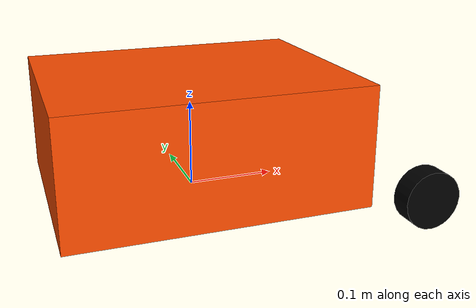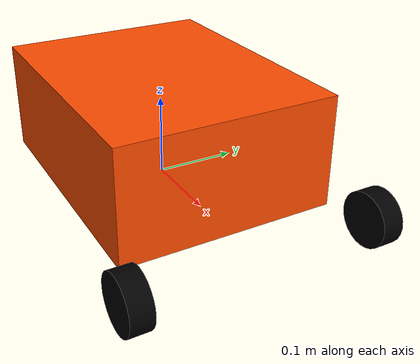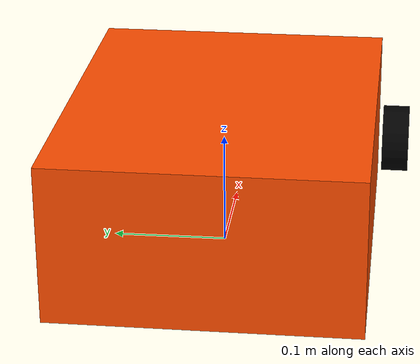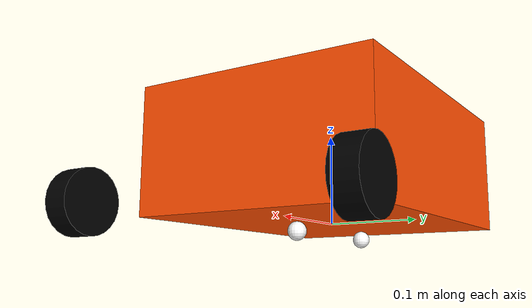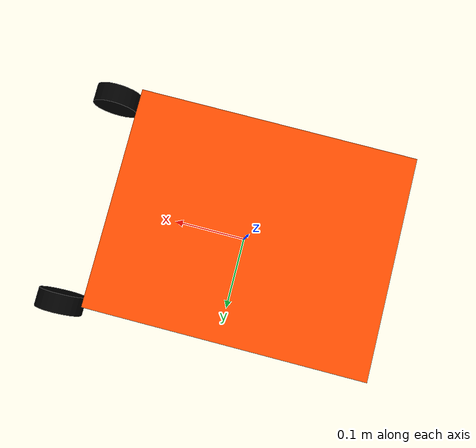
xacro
<?xml version="1.0"?>
<!-- Basic differential drive mobile base -->
<robot xmlns:xacro="http://www.ros.org/wiki/xacro" name="superbot_robot">
  <xacro:arg name="prefix" default="" />

  <xacro:include filename="$(find superbot_hardware)/urdf/superbot_description.urdf.xacro" />

  <!-- Import Rviz colors -->
  <xacro:include filename="$(find superbot_hardware)/urdf/superbot.materials.xacro" />

  <!-- Import superbot ros2_control description -->
  <xacro:include filename="$(find superbot_hardware)/ros2_control/superbot.ros2_control.xacro" />

  <xacro:superbot prefix="$(arg prefix)" />

  <xacro:superbot_ros2_control
    name="superbot" prefix="$(arg prefix)" />

</robot>

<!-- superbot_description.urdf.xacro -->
<robot xmlns:xacro="http://www.ros.org/wiki/xacro">

  <xacro:macro name="superbot" params="prefix">

    <!-- Konstanta dan properti dimensi robot -->
    <xacro:property name="PI" value="3.1415926535897931"/>
    <xacro:property name="base_mass" value="1.0"/>
    <xacro:property name="base_width" value="0.265"/>
    <xacro:property name="base_length" value="0.335"/>
    <xacro:property name="base_height" value="0.138"/>
    <xacro:property name="wheel_mass" value="0.05"/>
    <xacro:property name="wheel_len" value="0.026"/>
    <xacro:property name="wheel_radius" value="0.033"/>
    <xacro:property name="wheel_offset_x" value="0.226"/>
    <xacro:property name="wheel_offset_y" value="0.1485"/>
    <xacro:property name="wheel_offset_z" value="0.01"/>
    <xacro:property name="caster_wheel_mass" value="0.01"/>
    <xacro:property name="caster_wheel_radius" value="0.01"/>
    <xacro:property name="caster_wheel_offset_x" value="0.075"/>
    <xacro:property name="caster_wheel_offset_z" value="${wheel_offset_z - wheel_radius + caster_wheel_radius}"/>

    <!-- Material -->
    <material name="orange">
      <color rgba="1 0.3 0 1"/>
    </material>
    <material name="black">
      <color rgba="0 0 0 1"/>
    </material>
    <material name="white">
      <color rgba="1 1 1 1"/>
    </material>

    <!-- Base Link -->
    <link name="${prefix}base_link">
      <collision>
        <origin xyz="0 0 ${base_height/2}" rpy="0 0 0"/>
        <geometry>
          <box size="${base_length} ${base_width} ${base_height}"/>
        </geometry>
      </collision>

      <visual>
        <origin xyz="0 0 ${base_height/2}" rpy="0 0 0"/>
        <geometry>
          <box size="${base_length} ${base_width} ${base_height}"/>
        </geometry>
        <material name="orange"/>
      </visual>

      <inertial>
        <origin xyz="0 0 0" rpy="0 0 0"/>
        <mass value="${base_mass}"/>
        <inertia
          ixx="${base_mass / 12.0 * (base_width*base_width + base_height*base_height)}" ixy="0.0" ixz="0.0"
          iyy="${base_mass / 12.0 * (base_length*base_length + base_height*base_height)}" iyz="0.0"
          izz="${base_mass / 12.0 * (base_length*base_length + base_width*base_width)}"/>
      </inertial>
    </link>

    <!-- Left Wheel -->
    <joint name="${prefix}left_wheel_joint" type="continuous">
      <parent link="${prefix}base_link"/>
      <child link="${prefix}left_wheel"/>
      <origin xyz="${wheel_offset_x} ${wheel_offset_y} ${wheel_offset_z}" rpy="0 0 0"/>
      <axis xyz="0 1 0"/>
      <dynamics damping="0.2"/>
    </joint>

    <link name="${prefix}left_wheel">
      <collision>
        <origin xyz="0 0 0" rpy="${PI/2} 0 0"/>
        <geometry>
          <cylinder length="${wheel_len}" radius="${wheel_radius}"/>
        </geometry>
      </collision>
      <visual>
        <origin xyz="0 0 0" rpy="${PI/2} 0 0"/>
        <geometry>
          <cylinder length="${wheel_len}" radius="${wheel_radius}"/>
        </geometry>
        <material name="black"/>
      </visual>
      <inertial>
        <origin xyz="0 0 0" rpy="0 0 0"/>
        <mass value="${wheel_mass}"/>
        <inertia
          ixx="${wheel_mass / 12.0 * (3*wheel_radius*wheel_radius + wheel_len*wheel_len)}" ixy="0.0" ixz="0.0"
          iyy="${wheel_mass / 2.0 * wheel_radius*wheel_radius}" iyz="0.0"
          izz="${wheel_mass / 12.0 * (3*wheel_radius*wheel_radius + wheel_len*wheel_len)}"/>
      </inertial>
    </link>

    <!-- Right Wheel -->
    <joint name="${prefix}right_wheel_joint" type="continuous">
      <parent link="${prefix}base_link"/>
      <child link="${prefix}right_wheel"/>
      <origin xyz="${wheel_offset_x} -${wheel_offset_y} ${wheel_offset_z}" rpy="0 0 0"/>
      <axis xyz="0 1 0"/>
      <dynamics damping="0.2"/>
    </joint>

    <link name="${prefix}right_wheel">
      <collision>
        <origin xyz="0 0 0" rpy="${PI/2} 0 0"/>
        <geometry>
          <cylinder length="${wheel_len}" radius="${wheel_radius}"/>
        </geometry>
      </collision>
      <visual>
        <origin xyz="0 0 0" rpy="${PI/2} 0 0"/>
        <geometry>
          <cylinder length="${wheel_len}" radius="${wheel_radius}"/>
        </geometry>
        <material name="black"/>
      </visual>
      <inertial>
        <origin xyz="0 0 0" rpy="0 0 0"/>
        <mass value="${wheel_mass}"/>
        <inertia
          ixx="${wheel_mass / 12.0 * (3*wheel_radius*wheel_radius + wheel_len*wheel_len)}" ixy="0.0" ixz="0.0"
          iyy="${wheel_mass / 2.0 * wheel_radius*wheel_radius}" iyz="0.0"
          izz="${wheel_mass / 12.0 * (3*wheel_radius*wheel_radius + wheel_len*wheel_len)}"/>
      </inertial>
    </link>

    <!-- Frontal Caster Wheel -->
    <joint name="${prefix}caster_frontal_wheel_joint" type="fixed">
      <parent link="${prefix}base_link"/>
      <child link="${prefix}caster_frontal_wheel"/>
      <origin xyz="${caster_wheel_offset_x} 0 ${caster_wheel_offset_z}" rpy="0 0 0"/>
    </joint>

    <link name="${prefix}caster_frontal_wheel">
      <collision>
        <origin xyz="0 0 0" rpy="0 0 0"/>
        <geometry>
          <sphere radius="${caster_wheel_radius}"/>
        </geometry>
      </collision>
      <visual>
        <origin xyz="0 0 0" rpy="0 0 0"/>
        <geometry>
          <sphere radius="${caster_wheel_radius}"/>
        </geometry>
        <material name="white"/>
      </visual>
      <inertial>
        <origin xyz="0 0 0" rpy="0 0 0"/>
        <mass value="${caster_wheel_mass}"/>
        <inertia
          ixx="${0.4 * caster_wheel_mass * caster_wheel_radius * caster_wheel_radius}" ixy="0.0" ixz="0.0"
          iyy="${0.4 * caster_wheel_mass * caster_wheel_radius * caster_wheel_radius}" iyz="0.0"
          izz="${0.4 * caster_wheel_mass * caster_wheel_radius * caster_wheel_radius}"/>
      </inertial>
    </link>

    <!-- Rear Caster Wheel -->
    <joint name="${prefix}caster_rear_wheel_joint" type="fixed">
      <parent link="${prefix}base_link"/>
      <child link="${prefix}caster_rear_wheel"/>
      <origin xyz="-${caster_wheel_offset_x} 0 ${caster_wheel_offset_z}" rpy="0 0 0"/>
    </joint>

    <link name="${prefix}caster_rear_wheel">
      <collision>
        <origin xyz="0 0 0" rpy="0 0 0"/>
        <geometry>
          <sphere radius="${caster_wheel_radius}"/>
        </geometry>
      </collision>
      <visual>
        <origin xyz="0 0 0" rpy="0 0 0"/>
        <geometry>
          <sphere radius="${caster_wheel_radius}"/>
        </geometry>
        <material name="white"/>
      </visual>
      <inertial>
        <origin xyz="0 0 0" rpy="0 0 0"/>
        <mass value="${caster_wheel_mass}"/>
        <inertia
          ixx="${0.4 * caster_wheel_mass * caster_wheel_radius * caster_wheel_radius}" ixy="0.0" ixz="0.0"
          iyy="${0.4 * caster_wheel_mass * caster_wheel_radius * caster_wheel_radius}" iyz="0.0"
          izz="${0.4 * caster_wheel_mass * caster_wheel_radius * caster_wheel_radius}"/>
      </inertial>
    </link>

  </xacro:macro>
</robot>
